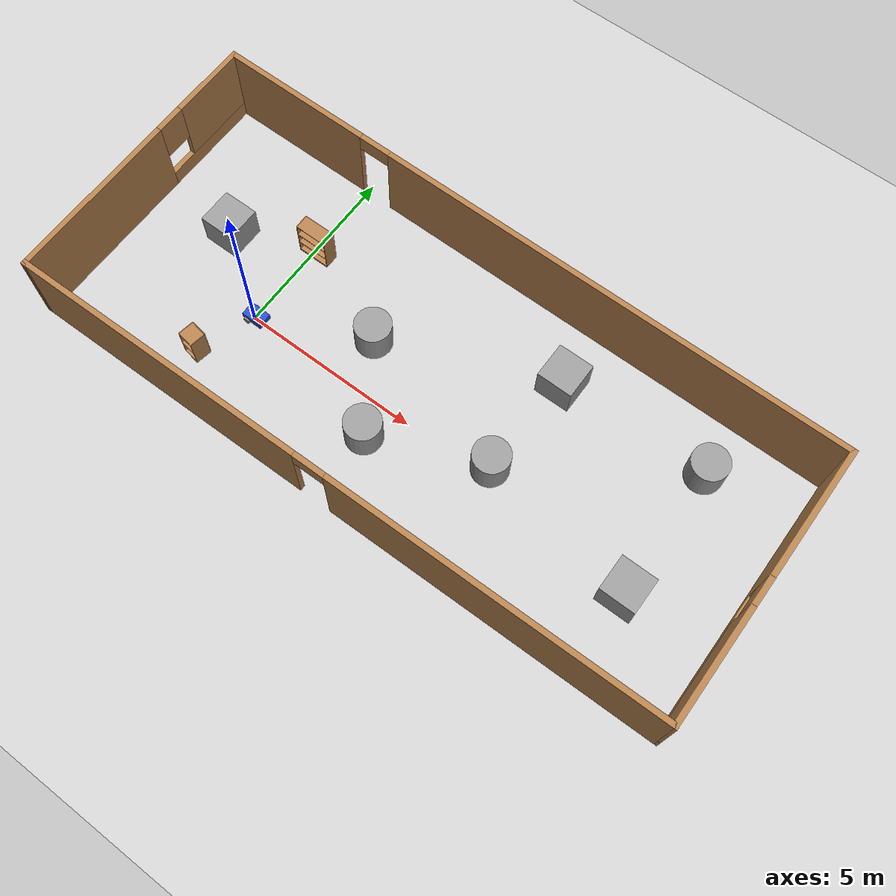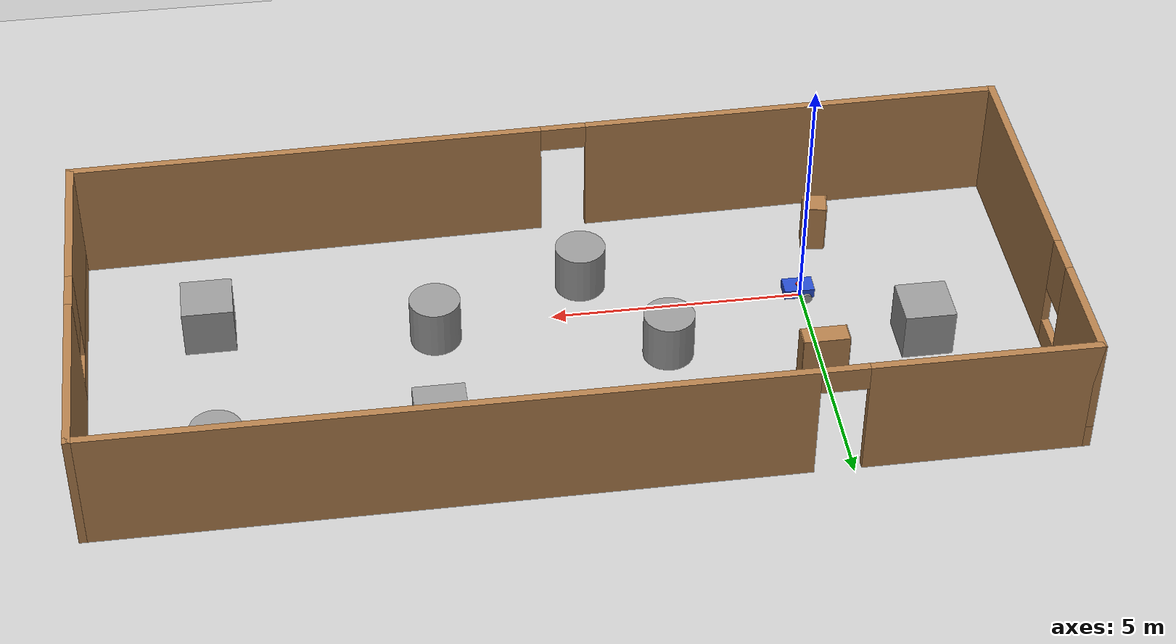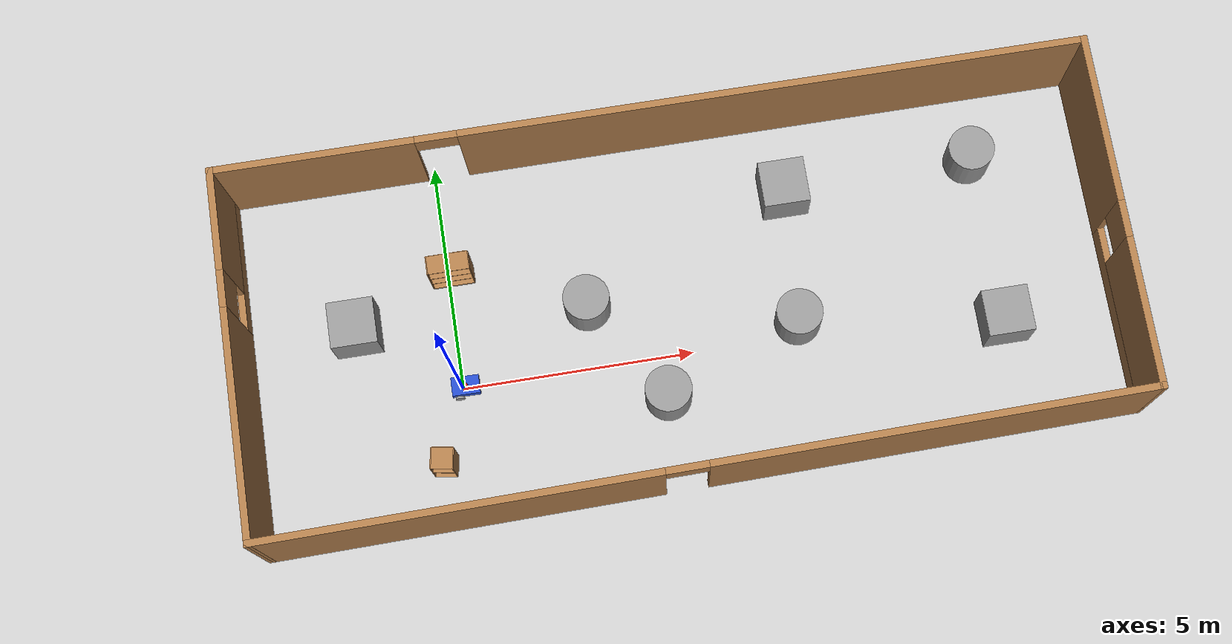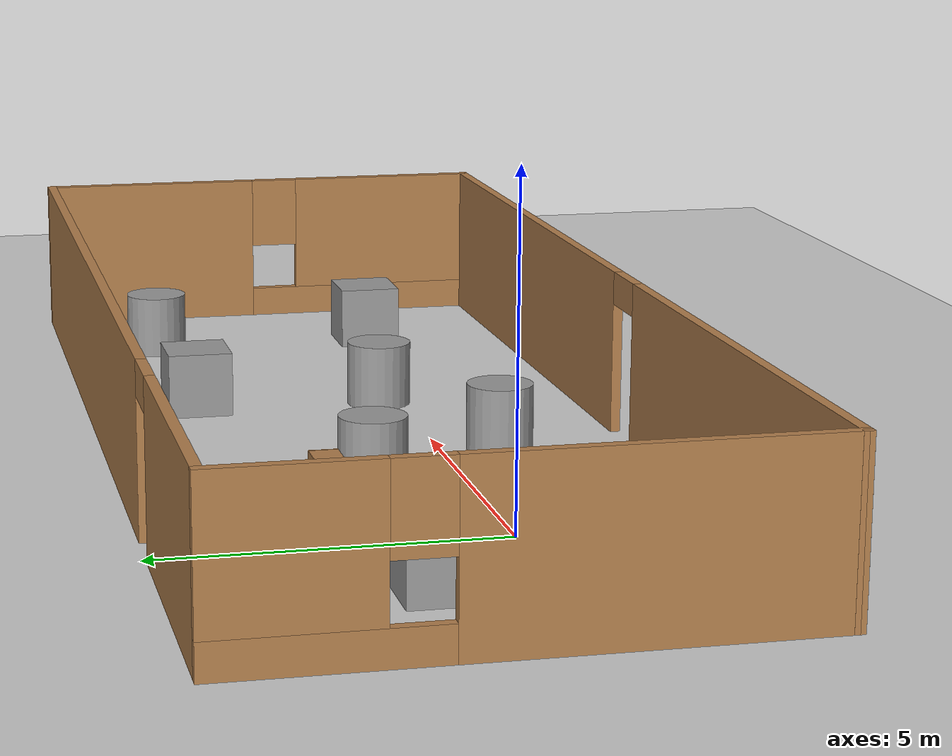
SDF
<sdf version="1.7">
 <world name="default">
  <light name="sun" type="directional">
   <pose>0 0 10 0 -0 0</pose>
   <diffuse>0.8 0.8 0.8 1</diffuse>
   <specular>0.2 0.2 0.2 1</specular>
   <attenuation>
    <range>1000</range>
    <constant>0.9</constant>
    <linear>0.01</linear>
    <quadratic>0.001</quadratic>
   </attenuation>
   <direction>-0.5 0.1 -0.9</direction>
   <spot><inner_angle>0</inner_angle><outer_angle>0</outer_angle><falloff>0</falloff></spot>
  </light>
  <model name="ground_plane">
   <static>1</static>
   <link name="link">
    <collision name="collision">
     <geometry><plane><normal>0 0 1</normal><size>100 100</size></plane></geometry>
     <surface><friction><ode><mu>100</mu><mu2>50</mu2></ode></friction></surface>
    </collision>
    <visual name="visual">
     <cast_shadows>0</cast_shadows>
     <geometry><plane><normal>0 0 1</normal><size>100 100</size></plane></geometry>
     <material>
      <script><uri>file://media/materials/scripts/gazebo.material</uri><name>Gazebo/Grey</name></script>
     </material>
    </visual>
   </link>
  </model>
  <gravity>0 0 -9.8</gravity>
  <magnetic_field>6e-06 2.3e-05 -4.2e-05</magnetic_field>
  <atmosphere type="adiabatic"/>
  <physics type="ode">
   <max_step_size>0.001</max_step_size>
   <real_time_factor>1</real_time_factor>
   <real_time_update_rate>1000</real_time_update_rate>
  </physics>
  <scene><ambient>0.4 0.4 0.4 1</ambient><background>0.7 0.7 0.7 1</background><shadows>1</shadows></scene>
  <audio><device>default</device></audio>
  <spherical_coordinates>
   <surface_model>EARTH_WGS84</surface_model>
   <latitude_deg>0</latitude_deg>
   <longitude_deg>0</longitude_deg>
   <elevation>0</elevation>
   <heading_deg>0</heading_deg>
  </spherical_coordinates>
  <model name="bookshelf">
   <static>1</static>
   <link name="link">
    <inertial><mass>1</mass></inertial>
    <collision name="back">
     <pose>0 0.005 0.6 0 -0 0</pose>
     <geometry><box><size>0.9 0.01 1.2</size></box></geometry>
    </collision>
    <visual name="visual1">
     <pose>0 0.005 0.6 0 -0 0</pose>
     <geometry><box><size>0.9 0.01 1.2</size></box></geometry>
     <material>
      <script><uri>file://media/materials/scripts/gazebo.material</uri><name>Gazebo/Wood</name></script>
     </material>
    </visual>
    <collision name="left_side">
     <pose>0.45 -0.195 0.6 0 -0 0</pose>
     <geometry><box><size>0.02 0.4 1.2</size></box></geometry>
    </collision>
    <visual name="visual2">
     <pose>0.45 -0.195 0.6 0 -0 0</pose>
     <geometry><box><size>0.02 0.4 1.2</size></box></geometry>
     <material>
      <script><uri>file://media/materials/scripts/gazebo.material</uri><name>Gazebo/Wood</name></script>
     </material>
    </visual>
    <collision name="right_side">
     <pose>-0.45 -0.195 0.6 0 -0 0</pose>
     <geometry><box><size>0.02 0.4 1.2</size></box></geometry>
    </collision>
    <visual name="visual3">
     <pose>-0.45 -0.195 0.6 0 -0 0</pose>
     <geometry><box><size>0.02 0.4 1.2</size></box></geometry>
     <material>
      <script><uri>file://media/materials/scripts/gazebo.material</uri><name>Gazebo/Wood</name></script>
     </material>
    </visual>
    <collision name="bottom">
     <pose>0 -0.195 0.03 0 -0 0</pose>
     <geometry><box><size>0.88 0.4 0.06</size></box></geometry>
    </collision>
    <visual name="visual4">
     <pose>0 -0.195 0.03 0 -0 0</pose>
     <geometry><box><size>0.88 0.4 0.06</size></box></geometry>
     <material>
      <script><uri>file://media/materials/scripts/gazebo.material</uri><name>Gazebo/Wood</name></script>
     </material>
    </visual>
    <collision name="top">
     <pose>0 -0.195 1.19 0 -0 0</pose>
     <geometry><box><size>0.88 0.4 0.02</size></box></geometry>
    </collision>
    <visual name="visual5">
     <pose>0 -0.195 1.19 0 -0 0</pose>
     <geometry><box><size>0.88 0.4 0.02</size></box></geometry>
     <material>
      <script><uri>file://media/materials/scripts/gazebo.material</uri><name>Gazebo/Wood</name></script>
     </material>
    </visual>
    <collision name="low_shelf">
     <pose>0 -0.195 0.43 0 -0 0</pose>
     <geometry><box><size>0.88 0.4 0.02</size></box></geometry>
    </collision>
    <visual name="visual6">
     <pose>0 -0.195 0.43 0 -0 0</pose>
     <geometry><box><size>0.88 0.4 0.02</size></box></geometry>
     <material>
      <script><uri>file://media/materials/scripts/gazebo.material</uri><name>Gazebo/Wood</name></script>
     </material>
    </visual>
    <collision name="high_shelf">
     <pose>0 -0.195 0.8 0 -0 0</pose>
     <geometry><box><size>0.88 0.4 0.02</size></box></geometry>
    </collision>
    <visual name="visual7">
     <pose>0 -0.195 0.8 0 -0 0</pose>
     <geometry><box><size>0.88 0.4 0.02</size></box></geometry>
     <material>
      <script><uri>file://media/materials/scripts/gazebo.material</uri><name>Gazebo/Wood</name></script>
     </material>
    </visual>
   </link>
   <pose>0.101763 2.69183 0 0 -0 0</pose>
  </model>
  <model name="cabinet">
   <static>1</static>
   <link name="cabinet_bottom_plate">
    <inertial>
     <pose>0 0 -1 0 -0 0</pose>
     <inertia><ixx>2.05</ixx><ixy>0</ixy><ixz>0</ixz><iyy>2.05</iyy><iyz>0</iyz><izz>2.05</izz></inertia>
     <mass>25</mass>
    </inertial>
    <collision name="cabinet_bottom_plate_geom">
     <pose>0 0 0.01 0 -0 0</pose>
     <geometry><box><size>0.45 0.45 0.02</size></box></geometry>
    </collision>
    <visual name="cabinet_bottom_plate_geom_visual">
     <pose>0 0 0.01 0 -0 0</pose>
     <geometry><box><size>0.45 0.45 0.02</size></box></geometry>
     <material>
      <script><uri>file://media/materials/scripts/gazebo.material</uri><name>Gazebo/Wood</name></script>
     </material>
    </visual>
    <collision name="cabinet_bottom_plate_geom_cabinet_back_plate">
     <pose>0.235 0 0.51 0 -0 0</pose>
     <geometry><box><size>0.02 0.45 1.02</size></box></geometry>
    </collision>
    <visual name="cabinet_bottom_plate_geom_cabinet_back_plate_visual">
     <pose>0.235 0 0.51 0 -0 0</pose>
     <geometry><box><size>0.02 0.45 1.02</size></box></geometry>
     <material>
      <script><uri>file://media/materials/scripts/gazebo.material</uri><name>Gazebo/Wood</name></script>
     </material>
    </visual>
    <collision name="cabinet_bottom_plate_geom_cabinet_left_plate">
     <pose>0 0.235 0.51 0 -0 0</pose>
     <geometry><box><size>0.45 0.02 1.02</size></box></geometry>
    </collision>
    <visual name="cabinet_bottom_plate_geom_cabinet_left_plate_visual">
     <pose>0 0.235 0.51 0 -0 0</pose>
     <geometry><box><size>0.45 0.02 1.02</size></box></geometry>
     <material>
      <script><uri>file://media/materials/scripts/gazebo.material</uri><name>Gazebo/Wood</name></script>
     </material>
    </visual>
    <collision name="cabinet_bottom_plate_geom_cabinet_middle_plate">
     <pose>0 0 0.51 0 -0 0</pose>
     <geometry><box><size>0.45 0.45 0.02</size></box></geometry>
    </collision>
    <visual name="cabinet_bottom_plate_geom_cabinet_middle_plate_visual">
     <pose>0 0 0.51 0 -0 0</pose>
     <geometry><box><size>0.45 0.45 0.02</size></box></geometry>
     <material>
      <script><uri>file://media/materials/scripts/gazebo.material</uri><name>Gazebo/Wood</name></script>
     </material>
    </visual>
    <collision name="cabinet_bottom_plate_geom_cabinet_right_plate">
     <pose>0 -0.235 0.51 0 -0 0</pose>
     <geometry><box><size>0.45 0.02 1.02</size></box></geometry>
    </collision>
    <visual name="cabinet_bottom_plate_geom_cabinet_right_plate_visual">
     <pose>0 -0.235 0.51 0 -0 0</pose>
     <geometry><box><size>0.45 0.02 1.02</size></box></geometry>
     <material>
      <script><uri>file://media/materials/scripts/gazebo.material</uri><name>Gazebo/Wood</name></script>
     </material>
    </visual>
    <collision name="cabinet_bottom_plate_geom_cabinet_top_plate">
     <pose>0 0 1.01 0 -0 0</pose>
     <geometry><box><size>0.45 0.45 0.02</size></box></geometry>
    </collision>
    <visual name="cabinet_bottom_plate_geom_cabinet_top_plate_visual">
     <pose>0 0 1.01 0 -0 0</pose>
     <geometry><box><size>0.45 0.45 0.02</size></box></geometry>
     <material>
      <script><uri>file://media/materials/scripts/gazebo.material</uri><name>Gazebo/Wood</name></script>
     </material>
    </visual>
   </link>
   <pose>-0.563715 -1.62199 0 0 -0 1.40258</pose>
  </model>
  <model name="test">
   <pose>4.86771 0.932351 0 0 -0 0</pose>
   <link name="Wall_1">
    <pose>-9.3 0.0005 0 0 -0 1.5708</pose>
    <visual name="Wall_1_Visual_0">
     <pose>-1.51993 0 1.25 0 -0 0</pose>
     <geometry><box><size>4.96014 0.15 2.5</size></box></geometry>
     <material>
      <script><uri>file://media/materials/scripts/gazebo.material</uri><name>Gazebo/Wood</name></script>
      <ambient>1 1 1 1</ambient>
     </material>
     <meta><layer>0</layer></meta>
    </visual>
    <collision name="Wall_1_Collision_0">
     <geometry><box><size>4.96014 0.15 2.5</size></box></geometry>
     <pose>-1.51993 0 1.25 0 -0 0</pose>
    </collision>
    <visual name="Wall_1_Visual_1">
     <pose>2.48007 0 0.25 0 -0 0</pose>
     <geometry><box><size>3.03986 0.15 0.5</size></box></geometry>
     <material>
      <script><uri>file://media/materials/scripts/gazebo.material</uri><name>Gazebo/Wood</name></script>
      <ambient>1 1 1 1</ambient>
     </material>
     <meta><layer>0</layer></meta>
    </visual>
    <collision name="Wall_1_Collision_1">
     <geometry><box><size>3.03986 0.15 0.5</size></box></geometry>
     <pose>2.48007 0 0.25 0 -0 0</pose>
    </collision>
    <visual name="Wall_1_Visual_2">
     <pose>2.88007 0 1.5 0 -0 0</pose>
     <geometry><box><size>2.23986 0.15 2</size></box></geometry>
     <material>
      <script><uri>file://media/materials/scripts/gazebo.material</uri><name>Gazebo/Wood</name></script>
      <ambient>1 1 1 1</ambient>
     </material>
     <meta><layer>0</layer></meta>
    </visual>
    <collision name="Wall_1_Collision_2">
     <geometry><box><size>2.23986 0.15 2</size></box></geometry>
     <pose>2.88007 0 1.5 0 -0 0</pose>
    </collision>
    <visual name="Wall_1_Visual_3">
     <pose>1.36014 0 1.9 0 -0 0</pose>
     <geometry><box><size>0.8 0.15 1.2</size></box></geometry>
     <material>
      <script><uri>file://media/materials/scripts/gazebo.material</uri><name>Gazebo/Wood</name></script>
      <ambient>1 1 1 1</ambient>
     </material>
     <meta><layer>0</layer></meta>
    </visual>
    <collision name="Wall_1_Collision_3">
     <geometry><box><size>0.8 0.15 1.2</size></box></geometry>
     <pose>1.36014 0 1.9 0 -0 0</pose>
    </collision>
   </link>
   <link name="Wall_3">
    <pose>0 3.9255 0 0 -0 0</pose>
    <visual name="Wall_3_Visual_0">
     <pose>-7.19265 0 1.25 0 -0 0</pose>
     <geometry><box><size>4.36471 0.15 2.5</size></box></geometry>
     <material>
      <script><uri>file://media/materials/scripts/gazebo.material</uri><name>Gazebo/Wood</name></script>
      <ambient>1 1 1 1</ambient>
     </material>
     <meta><layer>0</layer></meta>
    </visual>
    <collision name="Wall_3_Collision_0">
     <geometry><box><size>4.36471 0.15 2.5</size></box></geometry>
     <pose>-7.19265 0 1.25 0 -0 0</pose>
    </collision>
    <visual name="Wall_3_Visual_1">
     <pose>2.63235 0 1.25 0 -0 0</pose>
     <geometry><box><size>13.4853 0.15 2.5</size></box></geometry>
     <material>
      <script><uri>file://media/materials/scripts/gazebo.material</uri><name>Gazebo/Wood</name></script>
      <ambient>1 1 1 1</ambient>
     </material>
     <meta><layer>0</layer></meta>
    </visual>
    <collision name="Wall_3_Collision_1">
     <geometry><box><size>13.4853 0.15 2.5</size></box></geometry>
     <pose>2.63235 0 1.25 0 -0 0</pose>
    </collision>
    <visual name="Wall_3_Visual_2">
     <pose>-4.56029 0 2.25 0 -0 0</pose>
     <geometry><box><size>0.9 0.15 0.5</size></box></geometry>
     <material>
      <script><uri>file://media/materials/scripts/gazebo.material</uri><name>Gazebo/Wood</name></script>
      <ambient>1 1 1 1</ambient>
     </material>
     <meta><layer>0</layer></meta>
    </visual>
    <collision name="Wall_3_Collision_2">
     <geometry><box><size>0.9 0.15 0.5</size></box></geometry>
     <pose>-4.56029 0 2.25 0 -0 0</pose>
    </collision>
   </link>
   <link name="Wall_4">
    <pose>9.3 0.1255 0 0 -0 -1.5708</pose>
    <visual name="Wall_4_Visual_0">
     <pose>-2.02357 0 1.25 0 -0 0</pose>
     <geometry><box><size>3.70287 0.15 2.5</size></box></geometry>
     <material>
      <script><uri>file://media/materials/scripts/gazebo.material</uri><name>Gazebo/Wood</name></script>
      <ambient>1 1 1 1</ambient>
     </material>
     <meta><layer>0</layer></meta>
    </visual>
    <collision name="Wall_4_Collision_0">
     <geometry><box><size>3.70287 0.15 2.5</size></box></geometry>
     <pose>-2.02357 0 1.25 0 -0 0</pose>
    </collision>
    <visual name="Wall_4_Visual_1">
     <pose>1.85143 0 0.25 0 -0 0</pose>
     <geometry><box><size>4.04713 0.15 0.5</size></box></geometry>
     <material>
      <script><uri>file://media/materials/scripts/gazebo.material</uri><name>Gazebo/Wood</name></script>
      <ambient>1 1 1 1</ambient>
     </material>
     <meta><layer>0</layer></meta>
    </visual>
    <collision name="Wall_4_Collision_1">
     <geometry><box><size>4.04713 0.15 0.5</size></box></geometry>
     <pose>1.85143 0 0.25 0 -0 0</pose>
    </collision>
    <visual name="Wall_4_Visual_2">
     <pose>2.25143 0 1.5 0 -0 0</pose>
     <geometry><box><size>3.24713 0.15 2</size></box></geometry>
     <material>
      <script><uri>file://media/materials/scripts/gazebo.material</uri><name>Gazebo/Wood</name></script>
      <ambient>1 1 1 1</ambient>
     </material>
     <meta><layer>0</layer></meta>
    </visual>
    <collision name="Wall_4_Collision_2">
     <geometry><box><size>3.24713 0.15 2</size></box></geometry>
     <pose>2.25143 0 1.5 0 -0 0</pose>
    </collision>
    <visual name="Wall_4_Visual_3">
     <pose>0.22787 0 1.9 0 -0 0</pose>
     <geometry><box><size>0.8 0.15 1.2</size></box></geometry>
     <material>
      <script><uri>file://media/materials/scripts/gazebo.material</uri><name>Gazebo/Wood</name></script>
      <ambient>1 1 1 1</ambient>
     </material>
     <meta><layer>0</layer></meta>
    </visual>
    <collision name="Wall_4_Collision_3">
     <geometry><box><size>0.8 0.15 1.2</size></box></geometry>
     <pose>0.22787 0 1.9 0 -0 0</pose>
    </collision>
   </link>
   <link name="Wall_5">
    <pose>0 -3.7995 0 0 -0 -3.12815</pose>
    <visual name="Wall_5_Visual_0">
     <pose>-4.68137 0 1.25 0 -0 0</pose>
     <geometry><box><size>9.38895 0.15 2.5</size></box></geometry>
     <material>
      <script><uri>file://media/materials/scripts/gazebo.material</uri><name>Gazebo/Wood</name></script>
      <ambient>1 1 1 1</ambient>
     </material>
     <meta><layer>0</layer></meta>
    </visual>
    <collision name="Wall_5_Collision_0">
     <geometry><box><size>9.38895 0.15 2.5</size></box></geometry>
     <pose>-4.68137 0 1.25 0 -0 0</pose>
    </collision>
    <visual name="Wall_5_Visual_1">
     <pose>5.14447 0 1.25 0 -0 0</pose>
     <geometry><box><size>8.46273 0.15 2.5</size></box></geometry>
     <material>
      <script><uri>file://media/materials/scripts/gazebo.material</uri><name>Gazebo/Wood</name></script>
      <ambient>1 1 1 1</ambient>
     </material>
     <meta><layer>0</layer></meta>
    </visual>
    <collision name="Wall_5_Collision_1">
     <geometry><box><size>8.46273 0.15 2.5</size></box></geometry>
     <pose>5.14447 0 1.25 0 -0 0</pose>
    </collision>
    <visual name="Wall_5_Visual_2">
     <pose>0.46311 0 2.25 0 -0 0</pose>
     <geometry><box><size>0.9 0.15 0.5</size></box></geometry>
     <material>
      <script><uri>file://media/materials/scripts/gazebo.material</uri><name>Gazebo/Wood</name></script>
      <ambient>1 1 1 1</ambient>
     </material>
     <meta><layer>0</layer></meta>
    </visual>
    <collision name="Wall_5_Collision_2">
     <geometry><box><size>0.9 0.15 0.5</size></box></geometry>
     <pose>0.46311 0 2.25 0 -0 0</pose>
    </collision>
   </link>
   <static>1</static>
  </model>
  <model name="my_robot">
   <link name="base_footprint">
    <inertial>
     <pose>0.017857 0 0.188393 0 -0 0</pose>
     <mass>5.6</mass>
     <inertia>
      <ixx>0.680238</ixx>
      <ixy>0</ixy>
      <ixz>0.0138393</ixz>
      <iyy>0.898452</iyy>
      <iyz>0</iyz>
      <izz>0.353673</izz>
     </inertia>
    </inertial>
    <collision name="base_footprint_fixed_joint_lump__base_link_collision">
     <pose>0 0 0.2 0 -0 0</pose>
     <geometry><box><size>0.6 0.4 0.2</size></box></geometry>
    </collision>
    <collision name="base_footprint_fixed_joint_lump__caster_wheel_link_collision_1">
     <pose>0.2 0 0.05 0 -0 0</pose>
     <geometry><sphere><radius>0.05</radius></sphere></geometry>
     <surface><friction><ode><mu>0.1</mu><mu2>0.1</mu2></ode></friction></surface>
    </collision>
    <collision name="base_footprint_fixed_joint_lump__laser_frame_collision_2">
     <pose>0 0 0.3 0 -0 0</pose>
     <geometry><cylinder><length>0.04</length><radius>0.05</radius></cylinder></geometry>
    </collision>
    <visual name="base_footprint_fixed_joint_lump__base_link_visual">
     <pose>0 0 0.2 0 -0 0</pose>
     <geometry><box><size>0.6 0.4 0.2</size></box></geometry>
     <material>
      <script><name>Gazebo/Blue</name><uri>file://media/materials/scripts/gazebo.material</uri></script>
     </material>
    </visual>
    <visual name="base_footprint_fixed_joint_lump__caster_wheel_link_visual_1">
     <pose>0.2 0 0.05 0 -0 0</pose>
     <geometry><sphere><radius>0.05</radius></sphere></geometry>
     <material>
      <script><name>Gazebo/Grey</name><uri>file://media/materials/scripts/gazebo.material</uri></script>
     </material>
    </visual>
    <visual name="base_footprint_fixed_joint_lump__laser_frame_visual_2">
     <pose>0 0 0.3 0 -0 0</pose>
     <geometry><cylinder><length>0.04</length><radius>0.05</radius></cylinder></geometry>
     <material>
      <script><name>Gazebo/Red</name><uri>file://media/materials/scripts/gazebo.material</uri></script>
     </material>
    </visual>
    <sensor name="laser" type="ray">
     <visualize>1</visualize>
     <update_rate>10</update_rate>
     <ray>
      <scan>
       <horizontal>
        <samples>360</samples>
        <resolution>1</resolution>
        <min_angle>-3.14</min_angle>
        <max_angle>3.14</max_angle>
       </horizontal>
       <vertical><samples>1</samples><min_angle>0</min_angle><max_angle>0</max_angle></vertical>
      </scan>
      <range><min>0.5</min><max>12</max></range>
     </ray>
     <plugin name="laser_controller" filename="libgazebo_ros_ray_sensor.so">
      <ros><remapping>~/out:=scan</remapping></ros>
      <output_type>sensor_msgs/LaserScan</output_type>
      <frame_name>laser_frame</frame_name>
     </plugin>
     <pose>0 0 0.3 0 -0 0</pose>
    </sensor>
   </link>
   <joint name="base_left_wheel_joint" type="revolute">
    <pose relative_to="base_footprint">-0.15 0.225 0.1 0 -0 0</pose>
    <parent>base_footprint</parent>
    <child>left_wheel_link</child>
    <axis>
     <xyz>0 1 0</xyz>
     <limit><lower>-1e+16</lower><upper>1e+16</upper></limit>
     <dynamics><spring_reference>0</spring_reference><spring_stiffness>0</spring_stiffness></dynamics>
    </axis>
   </joint>
   <link name="left_wheel_link">
    <pose relative_to="base_left_wheel_joint">0 0 0 0 -0 0</pose>
    <inertial>
     <pose>0 0 0 1.5708 -0 0</pose>
     <mass>1</mass>
     <inertia><ixx>0.0108333</ixx><ixy>0</ixy><ixz>0</ixz><iyy>0.0108333</iyy><iyz>0</iyz><izz>0.02</izz></inertia>
    </inertial>
    <collision name="left_wheel_link_collision">
     <pose>0 0 0 1.5708 -0 0</pose>
     <geometry><cylinder><length>0.05</length><radius>0.1</radius></cylinder></geometry>
    </collision>
    <visual name="left_wheel_link_visual">
     <pose>0 0 0 1.5708 -0 0</pose>
     <geometry><cylinder><length>0.05</length><radius>0.1</radius></cylinder></geometry>
     <material>
      <script><name>Gazebo/Grey</name><uri>file://media/materials/scripts/gazebo.material</uri></script>
     </material>
    </visual>
   </link>
   <joint name="base_right_wheel_joint" type="revolute">
    <pose relative_to="base_footprint">-0.15 -0.225 0.1 0 -0 0</pose>
    <parent>base_footprint</parent>
    <child>right_wheel_link</child>
    <axis>
     <xyz>0 1 0</xyz>
     <limit><lower>-1e+16</lower><upper>1e+16</upper></limit>
     <dynamics><spring_reference>0</spring_reference><spring_stiffness>0</spring_stiffness></dynamics>
    </axis>
   </joint>
   <link name="right_wheel_link">
    <pose relative_to="base_right_wheel_joint">0 0 0 0 -0 0</pose>
    <inertial>
     <pose>0 0 0 1.5708 -0 0</pose>
     <mass>1</mass>
     <inertia><ixx>0.0108333</ixx><ixy>0</ixy><ixz>0</ixz><iyy>0.0108333</iyy><iyz>0</iyz><izz>0.02</izz></inertia>
    </inertial>
    <collision name="right_wheel_link_collision">
     <pose>0 0 0 1.5708 -0 0</pose>
     <geometry><cylinder><length>0.05</length><radius>0.1</radius></cylinder></geometry>
    </collision>
    <visual name="right_wheel_link_visual">
     <pose>0 0 0 1.5708 -0 0</pose>
     <geometry><cylinder><length>0.05</length><radius>0.1</radius></cylinder></geometry>
     <material>
      <script><name>Gazebo/Grey</name><uri>file://media/materials/scripts/gazebo.material</uri></script>
     </material>
    </visual>
   </link>
   <static>0</static>
   <plugin name="diff_drive_controller" filename="libgazebo_ros_diff_drive.so">
    <update_rate>50</update_rate>
    <left_joint>base_left_wheel_joint</left_joint>
    <right_joint>base_right_wheel_joint</right_joint>
    <wheel_separation>0.45</wheel_separation>
    <wheel_diameter>0.2</wheel_diameter>
    <publish_odom>1</publish_odom>
    <publish_odom_tf>1</publish_odom_tf>
    <publish_wheel_tf>1</publish_wheel_tf>
    <odometry_topic>odom</odometry_topic>
    <odometry_frame>odom</odometry_frame>
    <robot_base_frame>base_footprint</robot_base_frame>
   </plugin>
   <pose>0.067035 0.004002 0 0 0 -0.014111</pose>
  </model>
  <model name="unit_cylinder">
   <pose>2.89849 1.33518 0.499998 3e-06 -3e-06 0</pose>
   <link name="link">
    <inertial>
     <mass>1</mass>
     <inertia><ixx>0.145833</ixx><ixy>0</ixy><ixz>0</ixz><iyy>0.145833</iyy><iyz>0</iyz><izz>0.125</izz></inertia>
    </inertial>
    <collision name="collision">
     <geometry><cylinder><radius>0.5</radius><length>1</length></cylinder></geometry>
    </collision>
    <visual name="visual">
     <geometry><cylinder><radius>0.5</radius><length>1</length></cylinder></geometry>
     <material>
      <script><name>Gazebo/Grey</name><uri>file://media/materials/scripts/gazebo.material</uri></script>
     </material>
    </visual>
   </link>
  </model>
  <model name="unit_box">
   <pose>-2.08717 1.57475 0.499995 0 1e-05 0</pose>
   <link name="link">
    <inertial>
     <mass>1</mass>
     <inertia>
      <ixx>0.166667</ixx>
      <ixy>0</ixy>
      <ixz>0</ixz>
      <iyy>0.166667</iyy>
      <iyz>0</iyz>
      <izz>0.166667</izz>
     </inertia>
    </inertial>
    <collision name="collision"><geometry><box><size>1 1 1</size></box></geometry></collision>
    <visual name="visual">
     <geometry><box><size>1 1 1</size></box></geometry>
     <material>
      <script><name>Gazebo/Grey</name><uri>file://media/materials/scripts/gazebo.material</uri></script>
     </material>
    </visual>
   </link>
  </model>
  <model name="unit_cylinder_0">
   <pose>11.6573 3.32701 0.499998 3e-06 -4e-06 0</pose>
   <link name="link">
    <inertial>
     <mass>1</mass>
     <inertia><ixx>0.145833</ixx><ixy>0</ixy><ixz>0</ixz><iyy>0.145833</iyy><iyz>0</iyz><izz>0.125</izz></inertia>
    </inertial>
    <collision name="collision">
     <geometry><cylinder><radius>0.5</radius><length>1</length></cylinder></geometry>
    </collision>
    <visual name="visual">
     <geometry><cylinder><radius>0.5</radius><length>1</length></cylinder></geometry>
     <material>
      <script><name>Gazebo/Grey</name><uri>file://media/materials/scripts/gazebo.material</uri></script>
     </material>
    </visual>
   </link>
  </model>
  <model name="unit_cylinder_1">
   <pose>7.33641 0.306571 0.499992 -3e-06 4e-06 0</pose>
   <link name="link">
    <inertial>
     <mass>1</mass>
     <inertia><ixx>0.145833</ixx><ixy>0</ixy><ixz>0</ixz><iyy>0.145833</iyy><iyz>0</iyz><izz>0.125</izz></inertia>
    </inertial>
    <collision name="collision">
     <geometry><cylinder><radius>0.5</radius><length>1</length></cylinder></geometry>
    </collision>
    <visual name="visual">
     <geometry><cylinder><radius>0.5</radius><length>1</length></cylinder></geometry>
     <material>
      <script><name>Gazebo/Grey</name><uri>file://media/materials/scripts/gazebo.material</uri></script>
     </material>
    </visual>
   </link>
  </model>
  <model name="unit_box_0">
   <pose>7.49975 3.21346 0.499995 -1e-05 -0 -0</pose>
   <link name="link">
    <inertial>
     <mass>1</mass>
     <inertia>
      <ixx>0.166667</ixx>
      <ixy>0</ixy>
      <ixz>0</ixz>
      <iyy>0.166667</iyy>
      <iyz>0</iyz>
      <izz>0.166667</izz>
     </inertia>
    </inertial>
    <collision name="collision"><geometry><box><size>1 1 1</size></box></geometry></collision>
    <visual name="visual">
     <geometry><box><size>1 1 1</size></box></geometry>
     <material>
      <script><name>Gazebo/Grey</name><uri>file://media/materials/scripts/gazebo.material</uri></script>
     </material>
    </visual>
   </link>
  </model>
  <model name="unit_cylinder_2">
   <pose>4.3211 -0.899301 0.499993 -3e-06 -4e-06 -0</pose>
   <link name="link">
    <inertial>
     <mass>1</mass>
     <inertia><ixx>0.145833</ixx><ixy>0</ixy><ixz>0</ixz><iyy>0.145833</iyy><iyz>0</iyz><izz>0.125</izz></inertia>
    </inertial>
    <collision name="collision">
     <geometry><cylinder><radius>0.5</radius><length>1</length></cylinder></geometry>
    </collision>
    <visual name="visual">
     <geometry><cylinder><radius>0.5</radius><length>1</length></cylinder></geometry>
     <material>
      <script><name>Gazebo/Grey</name><uri>file://media/materials/scripts/gazebo.material</uri></script>
     </material>
    </visual>
   </link>
  </model>
  <model name="unit_box_1">
   <pose>11.7104 -0.366046 0.5 0 -0 0</pose>
   <link name="link">
    <inertial>
     <mass>1</mass>
     <inertia>
      <ixx>0.166667</ixx>
      <ixy>0</ixy>
      <ixz>0</ixz>
      <iyy>0.166667</iyy>
      <iyz>0</iyz>
      <izz>0.166667</izz>
     </inertia>
    </inertial>
    <collision name="collision"><geometry><box><size>1 1 1</size></box></geometry></collision>
    <visual name="visual">
     <geometry><box><size>1 1 1</size></box></geometry>
     <material>
      <script><name>Gazebo/Grey</name><uri>file://media/materials/scripts/gazebo.material</uri></script>
     </material>
    </visual>
   </link>
  </model>
 </world>
</sdf>
